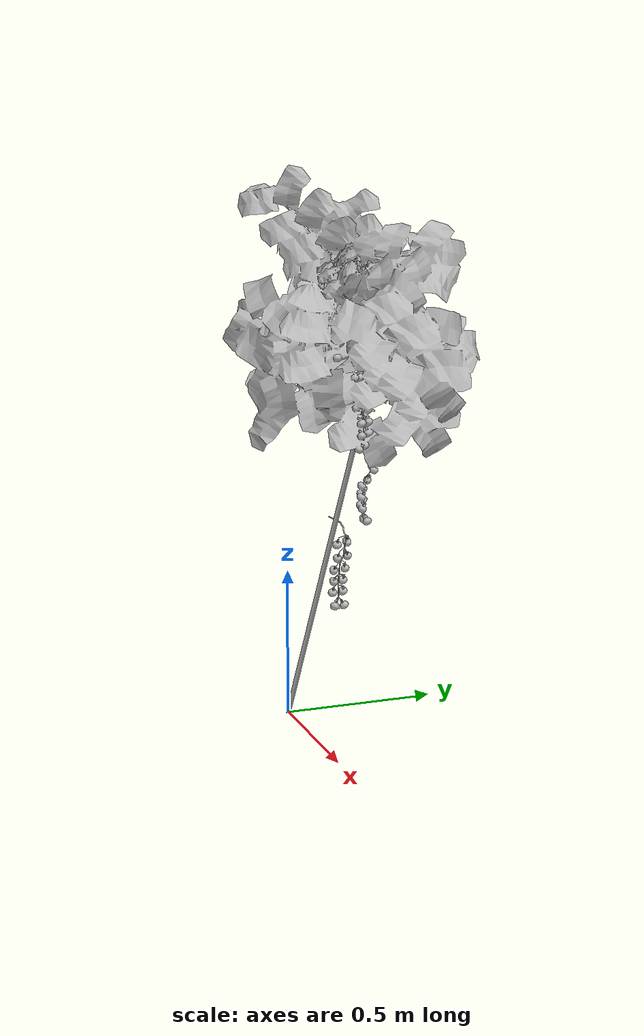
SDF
<?xml version="1.0"?>
<sdf version="1.6">
  <model name="tomato_vine_repo_v8">
    <static>true</static>
    <link name="link">
      <collision name="collision_trunk">
        <geometry><cylinder><radius>0.014</radius><length>1.604</length></cylinder></geometry>
        <pose>0.4006 0 0.6950 0 0.5229 0</pose>
      </collision>
      <visual name="plant">
        <geometry>
          <mesh>
            <uri>model://tomato_vine_repo_v8/meshes/tomato_vine_repo_v8.dae</uri>
          </mesh>
        </geometry>
      </visual>
    </link>
  </model>
</sdf>
